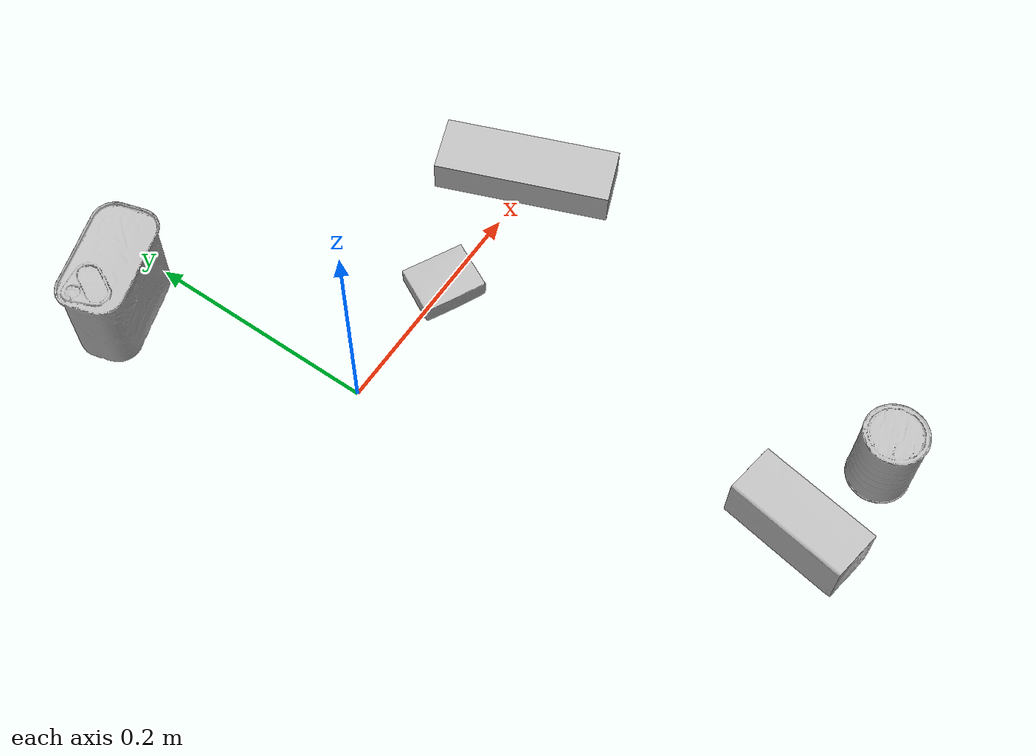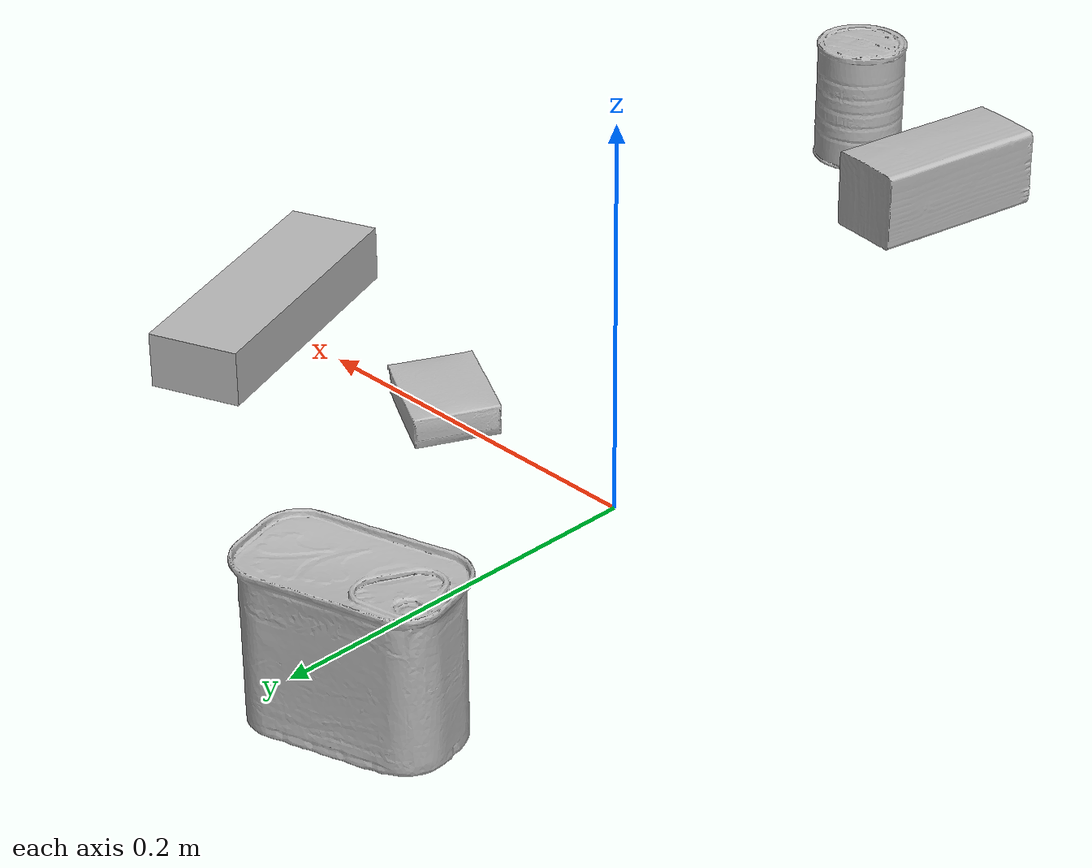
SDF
<sdf version="1.4">
  <world name="default">
    <light name="light1" type="point">
      <pose>0 0 1 0 0 0</pose>
      <diffuse>3 3 3 1</diffuse>
      <specular>3 3 3 1</specular>
    </light>
    <light name="light2" type="point">
      <pose>0 0.5 2 0 0 0</pose>
      <diffuse>1 1 1 1</diffuse>
      <specular>1 1 1 1</specular>
    </light>
    <light name="light3" type="point">
      <pose>0 0.5 2 0 0 0</pose>
      <diffuse>3 3 3 1</diffuse>
      <specular>3 3 3 1</specular>
    </light>
    <scene>
      <ambient>0.7 0.7 0.7</ambient>
    </scene>
    <model name="box1">
      <link name="link_box1">
        <collision name="default">
          <geometry>
            <mesh>
              <uri>model://pudding_box/collision_meshes/collision.obj</uri>
              <scale>0.5 0.5 0.5</scale>
            </mesh>
          </geometry>
          <surface>
            <friction>
              <ode>
                <mu>0.5</mu>
                <mu2>0.5</mu2>
              </ode>
            </friction>
          <contact>
        <ode>
            <max_vel>0</max_vel>
            <min_depth>0.0001</min_depth>
            <kp>1e8</kp>
        </ode>
    </contact></surface>
        </collision>
        <visual name="default">
          <geometry>
            <mesh>
              <uri>model://pudding_box/visual_meshes/visual.dae</uri>
              <scale>0.5 0.5 0.5</scale>
            </mesh>
          </geometry>
        </visual>
        <inertial>
          <mass>0.0642586499452591</mass>
          <pose>0.00024474109522998333 0.00040339428232982755 -0.0002594413817860186 0.005213101302141142 -0.006603800581388343 0.020079827019462423</pose>
          <inertia>
            <ixx>1.8160274e-05</ixx>
            <iyy>1.221836e-05</iyy>
            <izz>2.6818392e-05</izz>
            <ixy>0</ixy>
            <ixz>0</ixz>
            <iyz>0</iyz>
          </inertia>
        </inertial>
      </link>
      <pose>0.11961788684129715 0.00013026210945099592 0.009862903505563736 0.02234817387190863 -0.011391963856564054 -2.0577724277489864</pose>
    </model>
    <model name="box2">
      <link name="link_box2">
        <collision name="default">
          <geometry>
            <mesh>
              <uri>model://wood_block/collision_meshes/collision.obj</uri>
              <scale>0.5 0.5 0.5</scale>
            </mesh>
          </geometry>
          <surface>
            <friction>
              <ode>
                <mu>0.5</mu>
                <mu2>0.5</mu2>
              </ode>
            </friction>
          <contact>
        <ode>
            <max_vel>0</max_vel>
            <min_depth>0.0001</min_depth>
            <kp>1e8</kp>
        </ode>
    </contact></surface>
        </collision>
        <visual name="default">
          <geometry>
            <mesh>
              <uri>model://wood_block/visual_meshes/visual.dae</uri>
              <scale>0.5 0.5 0.5</scale>
            </mesh>
          </geometry>
        </visual>
        <inertial>
          <mass>0.2432606816291809</mass>
          <pose>-2.9066577553749084e-06 -0.000285404734313488 0.00013204290007706732 -0.0522103103121059 -0.005192696448147362 -0.0068613788455752145</pose>
          <inertia>
            <ixx>8.1379905e-05</ixx>
            <iyy>0.0002570791</iyy>
            <izz>0.00025611752</izz>
            <ixy>0</ixy>
            <ixz>0</ixz>
            <iyz>0</iyz>
          </inertia>
        </inertial>
      </link>
      <pose>0.09357549250125885 -0.3453797698020935 0.0226292684674263 -0.005208624938214645 0.005718752943746735 -1.7322407013139776</pose>
    </model>
    <model name="box3">
      <link name="link_box3">
        <collision name="default">
          <geometry>
            <mesh>
              <uri>model://jenga/collision_meshes/collision.obj</uri>
              <scale>1.0 1.0 1.0</scale>
            </mesh>
          </geometry>
          <surface>
            <friction>
              <ode>
                <mu>0.5</mu>
                <mu2>0.5</mu2>
              </ode>
            </friction>
          <contact>
        <ode>
            <max_vel>0</max_vel>
            <min_depth>0.0001</min_depth>
            <kp>1e8</kp>
        </ode>
    </contact></surface>
        </collision>
        <visual name="default">
          <geometry>
            <mesh>
              <uri>model://jenga/visual_meshes/visual.dae</uri>
              <scale>1.0 1.0 1.0</scale>
            </mesh>
          </geometry>
        </visual>
        <inertial>
          <mass>0.20405839383602142</mass>
          <pose>-2.502855807051674e-07 -0.00010250010382151231 -4.0923401684267446e-05 0.0 -7.342155186052628e-07 0.0</pose>
          <inertia>
            <ixx>5.6467907e-05</ixx>
            <iyy>0.000382625</iyy>
            <izz>0.00040848472</izz>
            <ixy>0</ixy>
            <ixz>0</ixz>
            <iyz>0</iyz>
          </inertia>
        </inertial>
      </link>
      <pose>0.2498675137758255 0.005856743082404137 0.015000000596046448 1.2267594384893794e-08 -2.478604398343567e-09 1.9421742409384128</pose>
    </model>
    <model name="can1">
      <link name="link_can1">
        <collision name="default">
          <geometry>
            <mesh>
              <uri>model://potted_meat_can/collision_meshes/collision.obj</uri>
              <scale>1.0 1.0 1.0</scale>
            </mesh>
          </geometry>
          <surface>
            <friction>
              <ode>
                <mu>0.5</mu>
                <mu2>0.5</mu2>
              </ode>
            </friction>
          <contact>
        <ode>
            <max_vel>0</max_vel>
            <min_depth>0.0001</min_depth>
            <kp>1e8</kp>
        </ode>
    </contact></surface>
        </collision>
        <visual name="default">
          <geometry>
            <mesh>
              <uri>model://potted_meat_can/visual_meshes/visual.dae</uri>
              <scale>1.0 1.0 1.0</scale>
            </mesh>
          </geometry>
        </visual>
        <inertial>
          <mass>0.4665880799293518</mass>
          <pose>0.0002288814284838736 -5.989112105453387e-05 -0.0006367449532262981 -0.028093382538733707 -0.007232605550223235 0.01540626728411476</pose>
          <inertia>
            <ixx>0.0006002166</ixx>
            <iyy>0.0003646772</iyy>
            <izz>0.00043654343</izz>
            <ixy>0</ixy>
            <ixz>0</ixz>
            <iyz>0</iyz>
          </inertia>
        </inertial>
      </link>
      <pose>-0.04728897288441658 0.20170794427394867 0.04212801530957222 -4.4711225227303156e-08 -4.815588033501854e-07 -1.2836341721938709</pose>
    </model>
    <model name="can2">
      <link name="link_can2">
        <collision name="default">
          <geometry>
            <mesh>
              <uri>model://master_chef_can/collision_meshes/collision.obj</uri>
              <scale>0.5 0.5 0.5</scale>
            </mesh>
          </geometry>
          <surface>
            <friction>
              <ode>
                <mu>0.5</mu>
                <mu2>0.5</mu2>
              </ode>
            </friction>
          <contact>
        <ode>
            <max_vel>0</max_vel>
            <min_depth>0.0001</min_depth>
            <kp>1e8</kp>
        </ode>
    </contact></surface>
        </collision>
        <visual name="default">
          <geometry>
            <mesh>
              <uri>model://master_chef_can/visual_meshes/visual.dae</uri>
              <scale>0.5 0.5 0.5</scale>
            </mesh>
          </geometry>
        </visual>
        <inertial>
          <mass>0.1648906171321869</mass>
          <pose>-4.661964703700505e-05 1.3926853625889635e-07 -5.079993206891231e-05 -0.0017995099244119924 0.0006479308957776391 -0.6102586503741109</pose>
          <inertia>
            <ixx>9.677961e-05</ixx>
            <iyy>9.606731e-05</iyy>
            <izz>5.3478136e-05</izz>
            <ixy>0</ixy>
            <ixz>0</ixz>
            <iyz>0</iyz>
          </inertia>
        </inertial>
      </link>
      <pose>0.1749536693096161 -0.3738767206668854 0.03530199080705643 -1.4045070480930404e-06 -9.915634260995478e-07 -2.3695752157773144</pose>
    </model>
  <physics type="ode">
      <max_contacts>50</max_contacts>
      <ode>
        <solver>
          <type>quick</type>
          <iters>75</iters>
        </solver>
        <constraints>
          <contact_max_correcting_vel>0</contact_max_correcting_vel>
          <contact_surface_layer>0</contact_surface_layer>
        </constraints>
      </ode>
    </physics></world>
</sdf>
